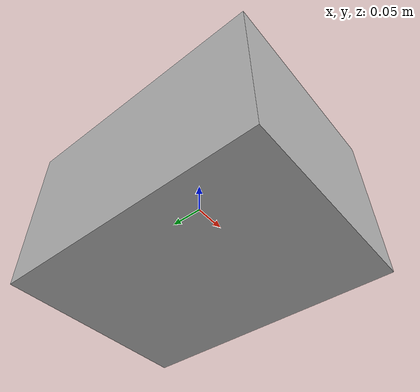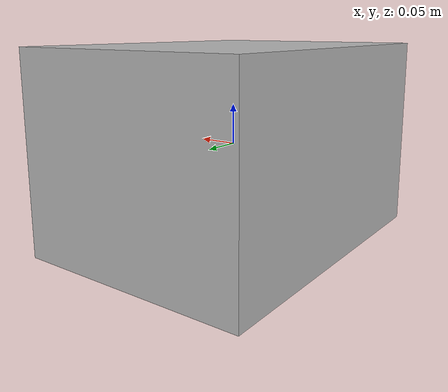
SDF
<?xml version="1.0"?>
<sdf version="1.6">
  <model name="sema_big_middle_box">
    <link name="sema_big_middle_box_link">
      <visual name="sema_big_middle_box_visual">
        <pose>0 0 0 0 0 0</pose>
        <geometry>
          <mesh>
            <uri>model://sema_big_middle_box/mesh/sema_big_middle_box.dae</uri>
          </mesh>
        </geometry>
        <origin xyz="0 0 0" rpy="0 0 0"/>
      </visual>
      <collision name="sema_big_middle_box_collision">
        <geometry>
          <box>
            <size>0.3 0.4 0.25</size>
          </box>
        </geometry>
        <surface>
          <friction>
            <ode>
              <mu>100.0</mu>
              <mu2>100.0</mu2>
            </ode>
          </friction>
        </surface>
      </collision>
      <inertial>
        <mass>6.94</mass>
        <inertia>
          <ixx>0.12876</ixx>
          <iyy>0.08825</iyy>
          <izz>0.14468</izz>
          <ixy>0</ixy>
          <ixz>0</ixz>
          <iyz>0</iyz>
        </inertia>
      </inertial>
    </link>
  </model>
</sdf>
